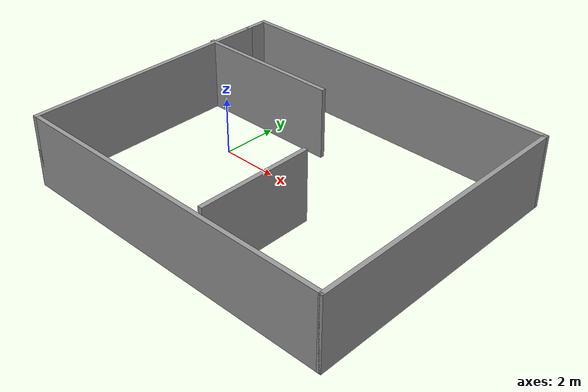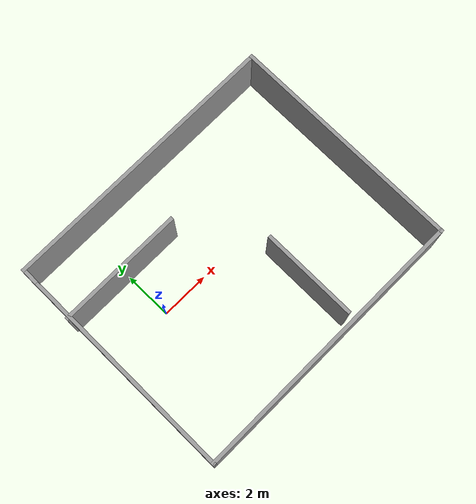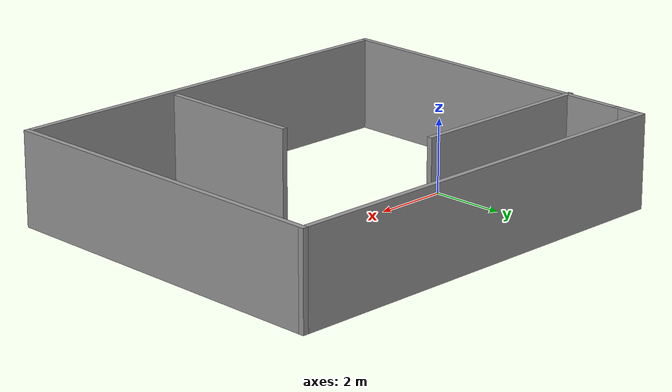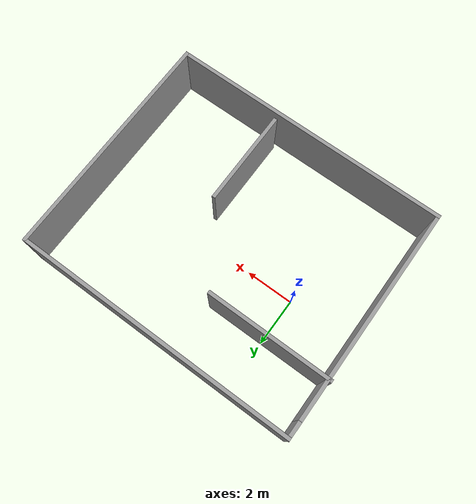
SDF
<sdf version="1.7">
 <world name="default">
  <light name="sun" type="directional">
   <pose>0 0 10 0 -0 0</pose>
   <diffuse>0.8 0.8 0.8 1</diffuse>
   <specular>0.2 0.2 0.2 1</specular>
   <attenuation>
    <range>1000</range>
    <constant>0.9</constant>
    <linear>0.01</linear>
    <quadratic>0.001</quadratic>
   </attenuation>
   <direction>-0.5 0.1 -0.9</direction>
   <spot><inner_angle>0</inner_angle><outer_angle>0</outer_angle><falloff>0</falloff></spot>
  </light>
  <gravity>0 0 -9.8</gravity>
  <magnetic_field>6e-06 2.3e-05 -4.2e-05</magnetic_field>
  <atmosphere type="adiabatic"/>
  <physics type="ode">
   <max_step_size>0.001</max_step_size>
   <real_time_factor>1</real_time_factor>
   <real_time_update_rate>1000</real_time_update_rate>
  </physics>
  <scene><ambient>0.4 0.4 0.4 1</ambient><background>0.7 0.7 0.7 1</background><shadows>1</shadows></scene>
  <audio><device>default</device></audio>
  <spherical_coordinates>
   <surface_model>EARTH_WGS84</surface_model>
   <latitude_deg>0</latitude_deg>
   <longitude_deg>0</longitude_deg>
   <elevation>0</elevation>
   <heading_deg>0</heading_deg>
  </spherical_coordinates>
  <model name="team_1_room">
   <pose>3.08939 -0.479483 0 0 -0 0</pose>
   <link name="Wall_11">
    <collision name="Wall_11_Collision">
     <geometry><box><size>5.25 0.15 2.5</size></box></geometry>
     <pose>0 0 1.25 0 -0 0</pose>
    </collision>
    <visual name="Wall_11_Visual">
     <pose>0 0 1.25 0 -0 0</pose>
     <geometry><box><size>5.25 0.15 2.5</size></box></geometry>
     <material>
      <script><uri>file://media/materials/scripts/gazebo.material</uri><name>Gazebo/Grey</name></script>
      <ambient>1 1 1 1</ambient>
     </material>
     <meta><layer>0</layer></meta>
    </visual>
    <pose>-3.28799 2.4193 0 0 -0 0</pose>
   </link>
   <link name="Wall_13">
    <collision name="Wall_13_Collision">
     <geometry><box><size>4 0.15 2.5</size></box></geometry>
     <pose>0 0 1.25 0 -0 0</pose>
    </collision>
    <visual name="Wall_13_Visual">
     <pose>0 0 1.25 0 -0 0</pose>
     <geometry><box><size>4 0.15 2.5</size></box></geometry>
     <material>
      <script><uri>file://media/materials/scripts/gazebo.material</uri><name>Gazebo/Grey</name></script>
      <ambient>1 1 1 1</ambient>
     </material>
     <meta><layer>0</layer></meta>
    </visual>
    <pose>1.32265 -2.53315 0 0 -0 1.5708</pose>
   </link>
   <link name="Wall_5">
    <collision name="Wall_5_Collision">
     <geometry><box><size>0.75 0.15 2.5</size></box></geometry>
     <pose>0 0 1.25 0 -0 0</pose>
    </collision>
    <visual name="Wall_5_Visual">
     <pose>0 0 1.25 0 -0 0</pose>
     <geometry><box><size>0.75 0.15 2.5</size></box></geometry>
     <material>
      <script><uri>file://media/materials/scripts/gazebo.material</uri><name>Gazebo/Grey</name></script>
      <ambient>1 1 1 1</ambient>
     </material>
     <meta><layer>0</layer></meta>
    </visual>
    <pose>-5.76201 4.35 0 0 -0 -1.5708</pose>
   </link>
   <link name="Wall_6">
    <collision name="Wall_6_Collision">
     <geometry><box><size>9 0.15 2.5</size></box></geometry>
     <pose>0 0 1.25 0 -0 0</pose>
    </collision>
    <visual name="Wall_6_Visual">
     <pose>0 0 1.25 0 -0 0</pose>
     <geometry><box><size>9 0.15 2.5</size></box></geometry>
     <material>
      <script><uri>file://media/materials/scripts/gazebo.material</uri><name>Gazebo/Grey</name></script>
      <ambient>1 1 1 1</ambient>
     </material>
     <meta><layer>0</layer></meta>
    </visual>
    <pose>-5.76201 -0.375 0 0 -0 -1.5708</pose>
   </link>
   <link name="Wall_7">
    <collision name="Wall_7_Collision">
     <geometry><box><size>11.75 0.15 2.5</size></box></geometry>
     <pose>0 0 1.25 0 -0 0</pose>
    </collision>
    <visual name="Wall_7_Visual">
     <pose>0 0 1.25 0 -0 0</pose>
     <geometry><box><size>11.75 0.15 2.5</size></box></geometry>
     <material>
      <script><uri>file://media/materials/scripts/gazebo.material</uri><name>Gazebo/Grey</name></script>
      <ambient>1 1 1 1</ambient>
     </material>
     <meta><layer>0</layer></meta>
    </visual>
    <pose>0.037992 -4.8 0 0 -0 0</pose>
   </link>
   <link name="Wall_8">
    <collision name="Wall_8_Collision">
     <geometry><box><size>9.75 0.15 2.5</size></box></geometry>
     <pose>0 0 1.25 0 -0 0</pose>
    </collision>
    <visual name="Wall_8_Visual">
     <pose>0 0 1.25 0 -0 0</pose>
     <geometry><box><size>9.75 0.15 2.5</size></box></geometry>
     <material>
      <script><uri>file://media/materials/scripts/gazebo.material</uri><name>Gazebo/Grey</name></script>
      <ambient>1 1 1 1</ambient>
     </material>
     <meta><layer>0</layer></meta>
    </visual>
    <pose>5.83799 -0 0 0 -0 1.5708</pose>
   </link>
   <link name="Wall_9">
    <collision name="Wall_9_Collision">
     <geometry><box><size>11.75 0.15 2.5</size></box></geometry>
     <pose>0 0 1.25 0 -0 0</pose>
    </collision>
    <visual name="Wall_9_Visual">
     <pose>0 0 1.25 0 -0 0</pose>
     <geometry><box><size>11.75 0.15 2.5</size></box></geometry>
     <material>
      <script><uri>file://media/materials/scripts/gazebo.material</uri><name>Gazebo/Grey</name></script>
      <ambient>1 1 1 1</ambient>
     </material>
     <meta><layer>0</layer></meta>
    </visual>
    <pose>0.037992 4.8 0 0 -0 3.14159</pose>
   </link>
   <static>1</static>
  </model>
 </world>
</sdf>
